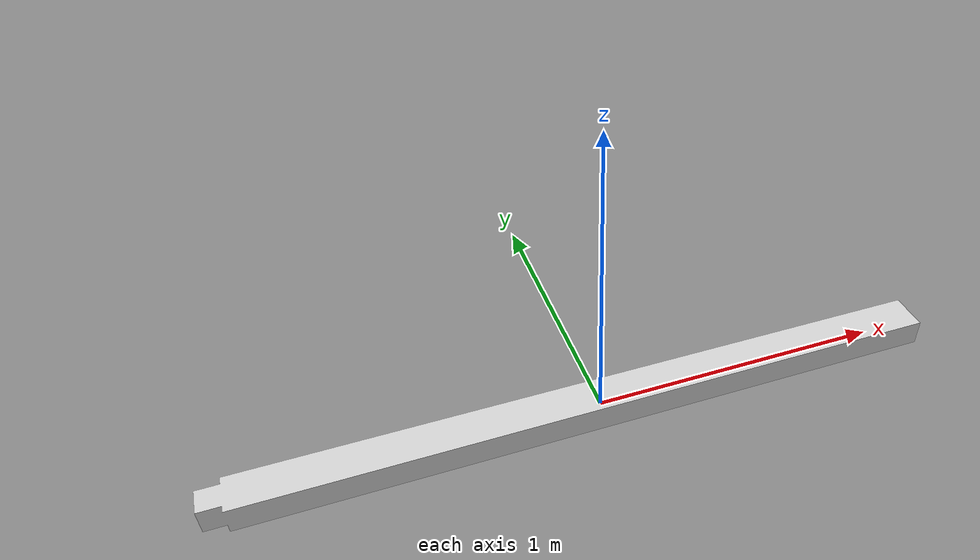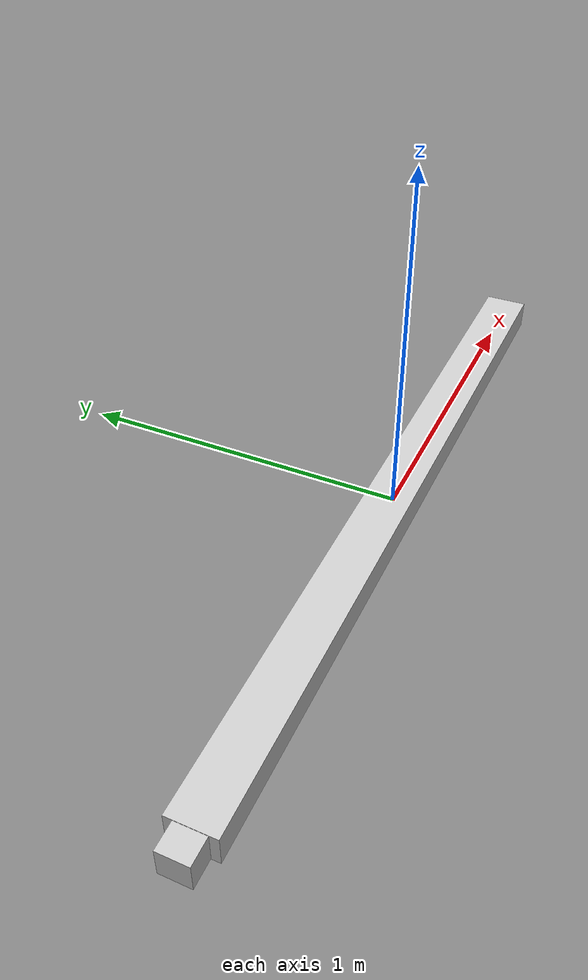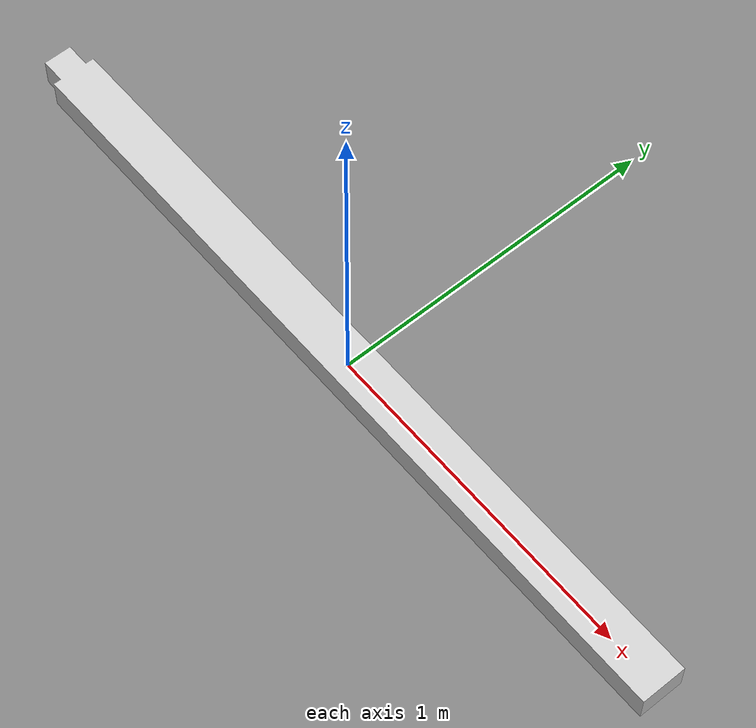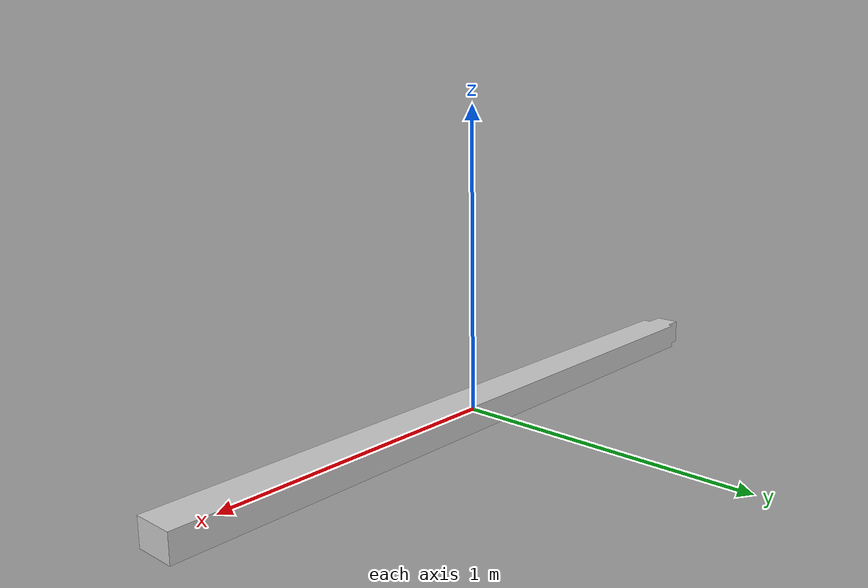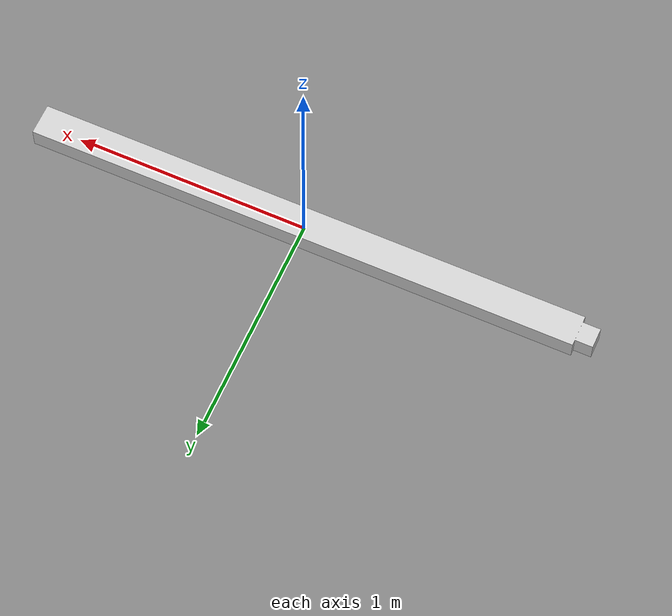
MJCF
<mujoco model="rail_des_live_body">
  <default>
    <default class="visual">
      <geom group="2" type="mesh" contype="0" conaffinity="0"/>
    </default>
    <default class="collision">
      <geom group="3" type="mesh"/>
    </default>
  </default>
  <asset>
    <material name="material_rail_des_live_body_0" specular="0.20000000000000004" shininess="1.0" rgba="0.80000000 0.80000000 0.80000000 1.0"/>
    <mesh file="rail_des_live_body.obj"/>
  </asset>
  <worldbody>
    <body name="rail_des_live_body">
      <geom material="material_rail_des_live_body_0" mesh="rail_des_live_body" class="visual"/>
      <geom mesh="rail_des_live_body" class="collision"/>
    </body>
  </worldbody>
</mujoco>
